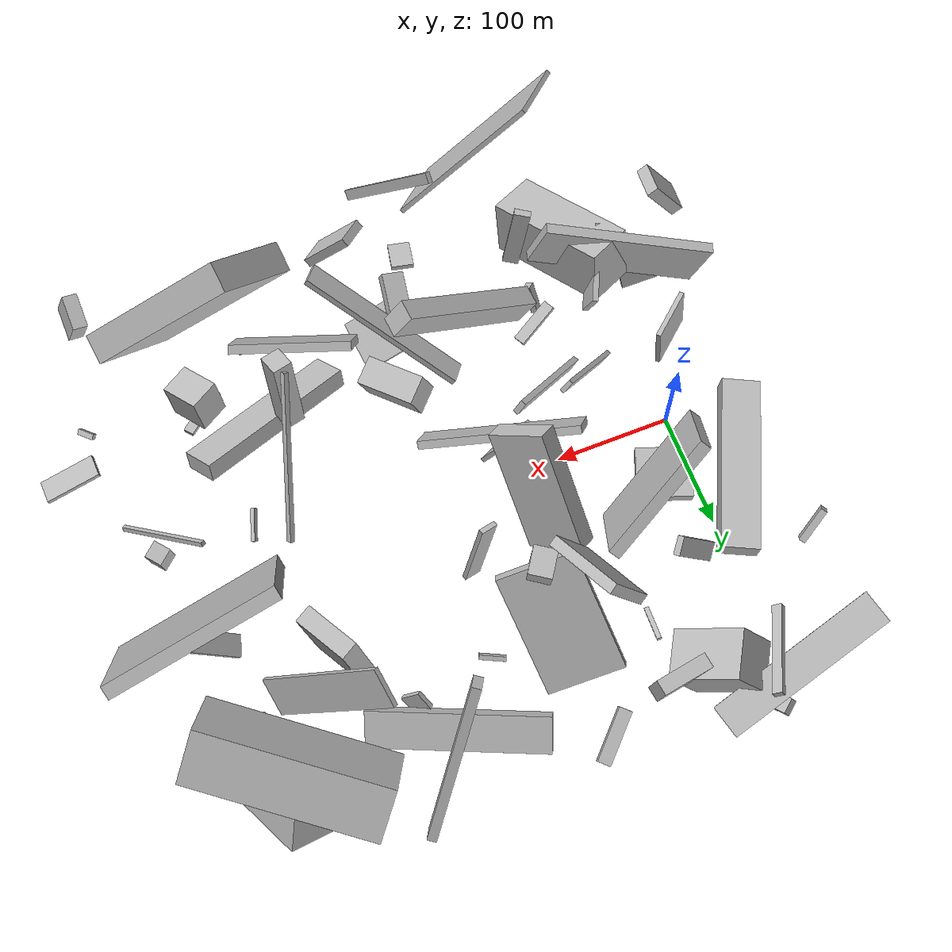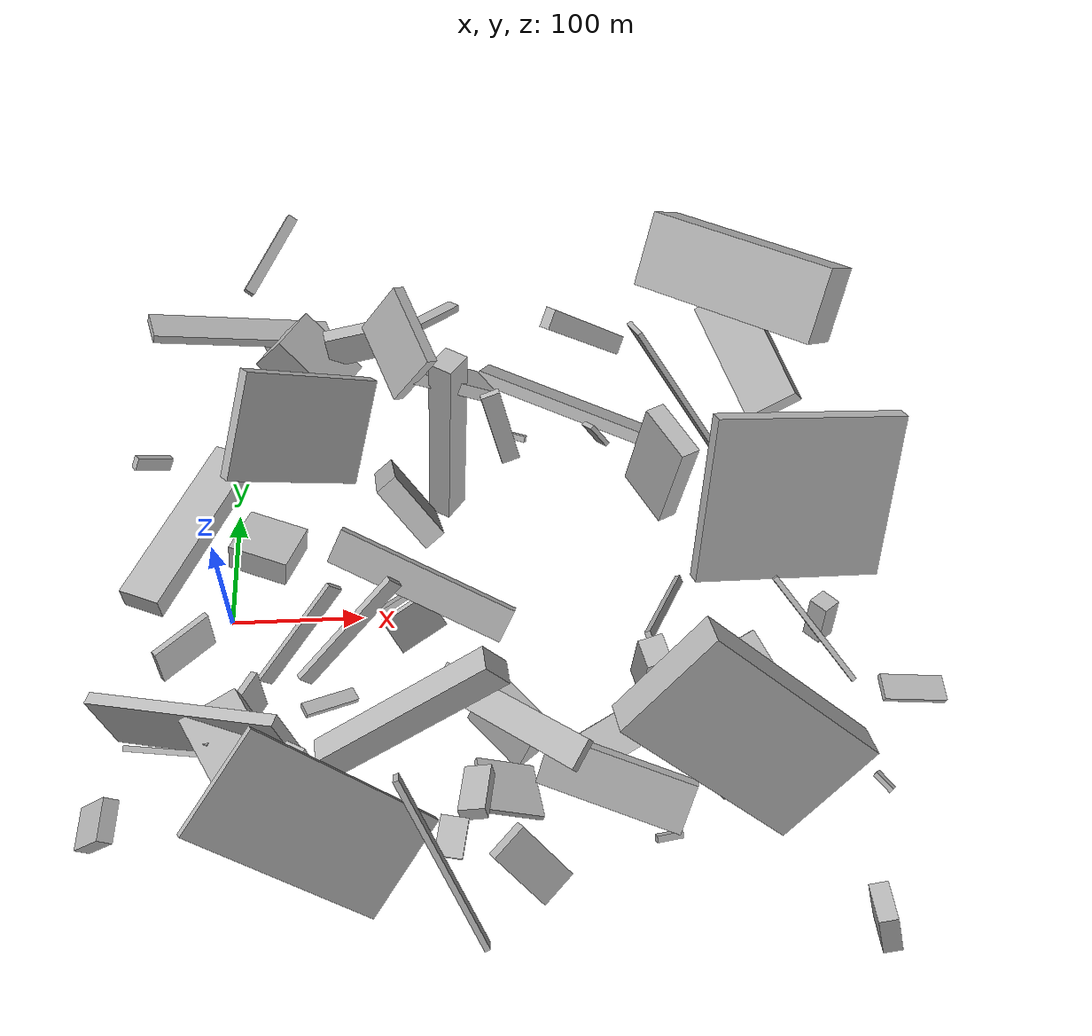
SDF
<sdf version="1.6">
 <world name="default">
  <scene>
   <sky><clouds><speed>12</speed></clouds></sky>
   <ambient>0.4 0.4 0.4 1</ambient>
   <background>0.7 0.7 0.7 1</background>
   <shadows>1</shadows>
  </scene>
  <gravity>0 0 -9.8066</gravity>
  <magnetic_field>6e-06 2.3e-05 -4.2e-05</magnetic_field>
  <physics default="0" name="default_physics" type="ode">
   <ode>
    <solver>
     <type>quick</type>
     <iters>10</iters>
     <sor>1.0</sor>
     <use_dynamic_moi_rescaling>0</use_dynamic_moi_rescaling>
    </solver>
    <constraints>
     <cfm>0</cfm>
     <erp>0.2</erp>
     <contact_max_correcting_vel>100</contact_max_correcting_vel>
     <contact_surface_layer>0.001</contact_surface_layer>
    </constraints>
   </ode>
   <max_step_size>0.004</max_step_size>
   <real_time_factor>1</real_time_factor>
   <real_time_update_rate>250</real_time_update_rate>
  </physics>
  <light name="sun" type="directional">
   <pose>0 0 10 0 0 0</pose>
   <diffuse>0.8 0.8 0.8 1</diffuse>
   <specular>0.2 0.2 0.2 1</specular>
   <attenuation>
    <range>1000</range>
    <constant>0.9</constant>
    <linear>0.01</linear>
    <quadratic>0.001</quadratic>
   </attenuation>
   <direction>-0.5 0.1 -0.9</direction>
  </light>
  <model name="building_1">
   <static>0</static>
   <pose>207.03133801378473 -179.82656864407636 24.555606538487392 -2.07587462719808 -1.0840218479317547 0.5806922564025359</pose>
   <link name="link">
    <gravity>0</gravity>
    <pose>0 0 23.0 0 0 0</pose>
    <collision name="collision"><geometry><box><size>4 44 46</size></box></geometry></collision>
    <visual name="visual">
     <cast_shadows>0</cast_shadows>
     <geometry><box><size>4 44 46</size></box></geometry>
     <material>
      <script>
       <uri>model://HANNAS_wall/materials/scripts</uri>
       <uri>model://HANNAS_wall/materials/textures</uri>
       <name>vrc/HANNAS_wall</name>
      </script>
     </material>
    </visual>
   </link>
  </model>
  <model name="building_2">
   <static>0</static>
   <pose>45.68089349129546 201.98140699089146 46.94285155546364 1.6538465109013927 -0.6332314647711537 2.5725708672790213</pose>
   <link name="link">
    <gravity>0</gravity>
    <pose>0 0 20.5 0 0 0</pose>
    <collision name="collision"><geometry><box><size>63 44 41</size></box></geometry></collision>
    <visual name="visual">
     <cast_shadows>0</cast_shadows>
     <geometry><box><size>63 44 41</size></box></geometry>
     <material>
      <script>
       <uri>model://HANNAS_wall/materials/scripts</uri>
       <uri>model://HANNAS_wall/materials/textures</uri>
       <name>vrc/HANNAS_wall</name>
      </script>
     </material>
    </visual>
   </link>
  </model>
  <model name="building_3">
   <static>0</static>
   <pose>-17.993431952205434 63.16051531408612 29.271907670295178 1.6311967029107788 -0.0037917073383606594 -2.0053342889796797</pose>
   <link name="link">
    <gravity>0</gravity>
    <pose>0 0 16.5 0 0 0</pose>
    <collision name="collision"><geometry><box><size>150 18 33</size></box></geometry></collision>
    <visual name="visual">
     <cast_shadows>0</cast_shadows>
     <geometry><box><size>150 18 33</size></box></geometry>
     <material>
      <script>
       <uri>model://HANNAS_wall/materials/scripts</uri>
       <uri>model://HANNAS_wall/materials/textures</uri>
       <name>vrc/HANNAS_wall</name>
      </script>
     </material>
    </visual>
   </link>
  </model>
  <model name="building_4">
   <static>0</static>
   <pose>406.1026028510513 -197.7259405589854 91.61203713005726 0.7811109287362976 -0.377183152252744 -1.4618144650387173</pose>
   <link name="link">
    <gravity>0</gravity>
    <pose>0 0 75.0 0 0 0</pose>
    <collision name="collision"><geometry><box><size>25 84 150</size></box></geometry></collision>
    <visual name="visual">
     <cast_shadows>0</cast_shadows>
     <geometry><box><size>25 84 150</size></box></geometry>
     <material>
      <script>
       <uri>model://HANNAS_wall/materials/scripts</uri>
       <uri>model://HANNAS_wall/materials/textures</uri>
       <name>vrc/HANNAS_wall</name>
      </script>
     </material>
    </visual>
   </link>
  </model>
  <model name="building_5">
   <static>0</static>
   <pose>161.9851902289659 197.92995460170903 62.681478628733736 0.4425740534790729 -0.7982265292344801 1.144569204504808</pose>
   <link name="link">
    <gravity>0</gravity>
    <pose>0 0 53.5 0 0 0</pose>
    <collision name="collision"><geometry><box><size>9 65 107</size></box></geometry></collision>
    <visual name="visual">
     <cast_shadows>0</cast_shadows>
     <geometry><box><size>9 65 107</size></box></geometry>
     <material>
      <script>
       <uri>model://HANNAS_wall/materials/scripts</uri>
       <uri>model://HANNAS_wall/materials/textures</uri>
       <name>vrc/HANNAS_wall</name>
      </script>
     </material>
    </visual>
   </link>
  </model>
  <model name="building_6">
   <static>0</static>
   <pose>276.1726967749778 -169.55098008042822 43.22986768496564 2.1601331890336604 -0.09326886543798585 2.7580916420415043</pose>
   <link name="link">
    <gravity>0</gravity>
    <pose>0 0 4.0 0 0 0</pose>
    <collision name="collision"><geometry><box><size>105 40 8</size></box></geometry></collision>
    <visual name="visual">
     <cast_shadows>0</cast_shadows>
     <geometry><box><size>105 40 8</size></box></geometry>
     <material>
      <script>
       <uri>model://HANNAS_wall/materials/scripts</uri>
       <uri>model://HANNAS_wall/materials/textures</uri>
       <name>vrc/HANNAS_wall</name>
      </script>
     </material>
    </visual>
   </link>
  </model>
  <model name="building_7">
   <static>0</static>
   <pose>357.56553652251864 38.56193824182666 84.05432504008078 1.7676236972880233 0.4649541959449369 1.785133607729958</pose>
   <link name="link">
    <gravity>0</gravity>
    <pose>0 0 75.0 0 0 0</pose>
    <collision name="collision"><geometry><box><size>12 132 150</size></box></geometry></collision>
    <visual name="visual">
     <cast_shadows>0</cast_shadows>
     <geometry><box><size>12 132 150</size></box></geometry>
     <material>
      <script>
       <uri>model://HANNAS_wall/materials/scripts</uri>
       <uri>model://HANNAS_wall/materials/textures</uri>
       <name>vrc/HANNAS_wall</name>
      </script>
     </material>
    </visual>
   </link>
  </model>
  <model name="building_8">
   <static>0</static>
   <pose>145.87950832627388 -126.29738537296413 66.83883931209114 -0.0657674722873654 -0.6422561459859432 0.13249014817401022</pose>
   <link name="link">
    <gravity>0</gravity>
    <pose>0 0 13.0 0 0 0</pose>
    <collision name="collision"><geometry><box><size>150 18 26</size></box></geometry></collision>
    <visual name="visual">
     <cast_shadows>0</cast_shadows>
     <geometry><box><size>150 18 26</size></box></geometry>
     <material>
      <script>
       <uri>model://HANNAS_wall/materials/scripts</uri>
       <uri>model://HANNAS_wall/materials/textures</uri>
       <name>vrc/HANNAS_wall</name>
      </script>
     </material>
    </visual>
   </link>
  </model>
  <model name="building_9">
   <static>0</static>
   <pose>34.44665036627563 71.58113510763275 19.755730331206887 -0.3332014644701353 1.3622466065269707 -2.259319217686199</pose>
   <link name="link">
    <gravity>0</gravity>
    <pose>0 0 21.0 0 0 0</pose>
    <collision name="collision"><geometry><box><size>22 47 42</size></box></geometry></collision>
    <visual name="visual">
     <cast_shadows>0</cast_shadows>
     <geometry><box><size>22 47 42</size></box></geometry>
     <material>
      <script>
       <uri>model://HANNAS_wall/materials/scripts</uri>
       <uri>model://HANNAS_wall/materials/textures</uri>
       <name>vrc/HANNAS_wall</name>
      </script>
     </material>
    </visual>
   </link>
  </model>
  <model name="building_10">
   <static>0</static>
   <pose>176.8228784217784 107.70399698210205 78.34562631816597 -1.8399825967830206 -1.4299178499395602 1.2483487746235762</pose>
   <link name="link">
    <gravity>0</gravity>
    <pose>0 0 9.5 0 0 0</pose>
    <collision name="collision"><geometry><box><size>150 23 19</size></box></geometry></collision>
    <visual name="visual">
     <cast_shadows>0</cast_shadows>
     <geometry><box><size>150 23 19</size></box></geometry>
     <material>
      <script>
       <uri>model://HANNAS_wall/materials/scripts</uri>
       <uri>model://HANNAS_wall/materials/textures</uri>
       <name>vrc/HANNAS_wall</name>
      </script>
     </material>
    </visual>
   </link>
  </model>
  <model name="building_11">
   <static>0</static>
   <pose>321.41230062851974 -104.9787243083189 37.42691171547469 0.30075330108506493 0.417021102686572 -1.0286640173192487</pose>
   <link name="link">
    <gravity>0</gravity>
    <pose>0 0 8.0 0 0 0</pose>
    <collision name="collision"><geometry><box><size>29 150 16</size></box></geometry></collision>
    <visual name="visual">
     <cast_shadows>0</cast_shadows>
     <geometry><box><size>29 150 16</size></box></geometry>
     <material>
      <script>
       <uri>model://HANNAS_wall/materials/scripts</uri>
       <uri>model://HANNAS_wall/materials/textures</uri>
       <name>vrc/HANNAS_wall</name>
      </script>
     </material>
    </visual>
   </link>
  </model>
  <model name="building_12">
   <static>0</static>
   <pose>390.7217541445759 184.63607846864403 128.1964512771194 0.16907455380882996 -0.6390790042762481 -2.309250714902341</pose>
   <link name="link">
    <gravity>0</gravity>
    <pose>0 0 29.0 0 0 0</pose>
    <collision name="collision"><geometry><box><size>44 150 58</size></box></geometry></collision>
    <visual name="visual">
     <cast_shadows>0</cast_shadows>
     <geometry><box><size>44 150 58</size></box></geometry>
     <material>
      <script>
       <uri>model://HANNAS_wall/materials/scripts</uri>
       <uri>model://HANNAS_wall/materials/textures</uri>
       <name>vrc/HANNAS_wall</name>
      </script>
     </material>
    </visual>
   </link>
  </model>
  <model name="building_13">
   <static>0</static>
   <pose>52.57708385155124 126.68817777935406 69.5444079430602 2.5689326082770543 -0.3930392805579423 -2.2111667368330794</pose>
   <link name="link">
    <gravity>0</gravity>
    <pose>0 0 24.5 0 0 0</pose>
    <collision name="collision"><geometry><box><size>16 6 49</size></box></geometry></collision>
    <visual name="visual">
     <cast_shadows>0</cast_shadows>
     <geometry><box><size>16 6 49</size></box></geometry>
     <material>
      <script>
       <uri>model://HANNAS_wall/materials/scripts</uri>
       <uri>model://HANNAS_wall/materials/textures</uri>
       <name>vrc/HANNAS_wall</name>
      </script>
     </material>
    </visual>
   </link>
  </model>
  <model name="building_14">
   <static>0</static>
   <pose>361.95979284593443 -135.41762886589308 46.1719040928021 1.8427030378848974 -0.07483934741389904 0.5560310040259743</pose>
   <link name="link">
    <gravity>0</gravity>
    <pose>0 0 17.5 0 0 0</pose>
    <collision name="collision"><geometry><box><size>27 33 35</size></box></geometry></collision>
    <visual name="visual">
     <cast_shadows>0</cast_shadows>
     <geometry><box><size>27 33 35</size></box></geometry>
     <material>
      <script>
       <uri>model://HANNAS_wall/materials/scripts</uri>
       <uri>model://HANNAS_wall/materials/textures</uri>
       <name>vrc/HANNAS_wall</name>
      </script>
     </material>
    </visual>
   </link>
  </model>
  <model name="building_15">
   <static>0</static>
   <pose>159.35978637251682 -250.82765278324615 104.34303591211419 2.1875904494594156 0.3103148724568858 -2.8995164780222864</pose>
   <link name="link">
    <gravity>0</gravity>
    <pose>0 0 4.5 0 0 0</pose>
    <collision name="collision"><geometry><box><size>4 135 9</size></box></geometry></collision>
    <visual name="visual">
     <cast_shadows>0</cast_shadows>
     <geometry><box><size>4 135 9</size></box></geometry>
     <material>
      <script>
       <uri>model://HANNAS_wall/materials/scripts</uri>
       <uri>model://HANNAS_wall/materials/textures</uri>
       <name>vrc/HANNAS_wall</name>
      </script>
     </material>
    </visual>
   </link>
  </model>
  <model name="building_16">
   <static>0</static>
   <pose>79.60733798082512 -99.07740588536434 55.129707940108005 1.8464269913810334 -1.274802586326647 0.18212359419008362</pose>
   <link name="link">
    <gravity>0</gravity>
    <pose>0 0 5.0 0 0 0</pose>
    <collision name="collision"><geometry><box><size>4 40 10</size></box></geometry></collision>
    <visual name="visual">
     <cast_shadows>0</cast_shadows>
     <geometry><box><size>4 40 10</size></box></geometry>
     <material>
      <script>
       <uri>model://HANNAS_wall/materials/scripts</uri>
       <uri>model://HANNAS_wall/materials/textures</uri>
       <name>vrc/HANNAS_wall</name>
      </script>
     </material>
    </visual>
   </link>
  </model>
  <model name="building_17">
   <static>0</static>
   <pose>131.87058221815602 41.37820725405767 81.43396679481657 -0.9752416564270314 -0.7802898488255688 -1.469202523978807</pose>
   <link name="link">
    <gravity>0</gravity>
    <pose>0 0 8.5 0 0 0</pose>
    <collision name="collision"><geometry><box><size>107 53 17</size></box></geometry></collision>
    <visual name="visual">
     <cast_shadows>0</cast_shadows>
     <geometry><box><size>107 53 17</size></box></geometry>
     <material>
      <script>
       <uri>model://HANNAS_wall/materials/scripts</uri>
       <uri>model://HANNAS_wall/materials/textures</uri>
       <name>vrc/HANNAS_wall</name>
      </script>
     </material>
    </visual>
   </link>
  </model>
  <model name="building_18">
   <static>0</static>
   <pose>57.71753777804609 -44.734609713383016 54.42149229016693 1.2953125927125249 0.7859823749781513 0.2227060275396204</pose>
   <link name="link">
    <gravity>0</gravity>
    <pose>0 0 2.0 0 0 0</pose>
    <collision name="collision"><geometry><box><size>12 92 4</size></box></geometry></collision>
    <visual name="visual">
     <cast_shadows>0</cast_shadows>
     <geometry><box><size>12 92 4</size></box></geometry>
     <material>
      <script>
       <uri>model://HANNAS_wall/materials/scripts</uri>
       <uri>model://HANNAS_wall/materials/textures</uri>
       <name>vrc/HANNAS_wall</name>
      </script>
     </material>
    </visual>
   </link>
  </model>
  <model name="building_19">
   <static>0</static>
   <pose>190.26714568274826 -87.7734796475936 26.673660484795022 2.1554825250124328 -1.2839159991200593 0.16399225038640056</pose>
   <link name="link">
    <gravity>0</gravity>
    <pose>0 0 26.0 0 0 0</pose>
    <collision name="collision"><geometry><box><size>35 25 52</size></box></geometry></collision>
    <visual name="visual">
     <cast_shadows>0</cast_shadows>
     <geometry><box><size>35 25 52</size></box></geometry>
     <material>
      <script>
       <uri>model://HANNAS_wall/materials/scripts</uri>
       <uri>model://HANNAS_wall/materials/textures</uri>
       <name>vrc/HANNAS_wall</name>
      </script>
     </material>
    </visual>
   </link>
  </model>
  <model name="building_20">
   <static>0</static>
   <pose>164.27304942239843 -205.91546877433748 49.73359538857104 -0.006182057788467143 -0.29105557538973414 1.361042253599788</pose>
   <link name="link">
    <gravity>0</gravity>
    <pose>0 0 2.0 0 0 0</pose>
    <collision name="collision"><geometry><box><size>27 19 4</size></box></geometry></collision>
    <visual name="visual">
     <cast_shadows>0</cast_shadows>
     <geometry><box><size>27 19 4</size></box></geometry>
     <material>
      <script>
       <uri>model://HANNAS_wall/materials/scripts</uri>
       <uri>model://HANNAS_wall/materials/textures</uri>
       <name>vrc/HANNAS_wall</name>
      </script>
     </material>
    </visual>
   </link>
  </model>
  <model name="building_21">
   <static>0</static>
   <pose>268.27931061079914 192.7777438225504 22.77560409585878 3.0063389996480736 -0.6485241195855963 -1.922363673345818</pose>
   <link name="link">
    <gravity>0</gravity>
    <pose>0 0 5.0 0 0 0</pose>
    <collision name="collision"><geometry><box><size>32 150 10</size></box></geometry></collision>
    <visual name="visual">
     <cast_shadows>0</cast_shadows>
     <geometry><box><size>32 150 10</size></box></geometry>
     <material>
      <script>
       <uri>model://HANNAS_wall/materials/scripts</uri>
       <uri>model://HANNAS_wall/materials/textures</uri>
       <name>vrc/HANNAS_wall</name>
      </script>
     </material>
    </visual>
   </link>
  </model>
  <model name="building_22">
   <static>0</static>
   <pose>231.2396053447493 -240.5497478229759 42.40309032026714 0.3719443788958804 -0.6035458542199771 -1.048612886759953</pose>
   <link name="link">
    <gravity>0</gravity>
    <pose>0 0 27.5 0 0 0</pose>
    <collision name="collision"><geometry><box><size>8 27 55</size></box></geometry></collision>
    <visual name="visual">
     <cast_shadows>0</cast_shadows>
     <geometry><box><size>8 27 55</size></box></geometry>
     <material>
      <script>
       <uri>model://HANNAS_wall/materials/scripts</uri>
       <uri>model://HANNAS_wall/materials/textures</uri>
       <name>vrc/HANNAS_wall</name>
      </script>
     </material>
    </visual>
   </link>
  </model>
  <model name="building_23">
   <static>0</static>
   <pose>-35.652025465561586 -120.64139807787865 24.939395514198573 0.14597488809614226 -0.4619755988916748 1.4398714766706002</pose>
   <link name="link">
    <gravity>0</gravity>
    <pose>0 0 15.5 0 0 0</pose>
    <collision name="collision"><geometry><box><size>4 51 31</size></box></geometry></collision>
    <visual name="visual">
     <cast_shadows>0</cast_shadows>
     <geometry><box><size>4 51 31</size></box></geometry>
     <material>
      <script>
       <uri>model://HANNAS_wall/materials/scripts</uri>
       <uri>model://HANNAS_wall/materials/textures</uri>
       <name>vrc/HANNAS_wall</name>
      </script>
     </material>
    </visual>
   </link>
  </model>
  <model name="building_24">
   <static>0</static>
   <pose>341.22712500120565 102.5491641083801 51.2989974421735 1.46652532260699 0.08755468533276628 -1.0750973352760158</pose>
   <link name="link">
    <gravity>0</gravity>
    <pose>0 0 8.0 0 0 0</pose>
    <collision name="collision"><geometry><box><size>49 84 16</size></box></geometry></collision>
    <visual name="visual">
     <cast_shadows>0</cast_shadows>
     <geometry><box><size>49 84 16</size></box></geometry>
     <material>
      <script>
       <uri>model://HANNAS_wall/materials/scripts</uri>
       <uri>model://HANNAS_wall/materials/textures</uri>
       <name>vrc/HANNAS_wall</name>
      </script>
     </material>
    </visual>
   </link>
  </model>
  <model name="building_25">
   <static>0</static>
   <pose>446.82257860612106 -37.99666188562338 28.490045660324867 2.246486716125257 1.3890150963949535 -1.774395877027261</pose>
   <link name="link">
    <gravity>0</gravity>
    <pose>0 0 7.5 0 0 0</pose>
    <collision name="collision"><geometry><box><size>34 15 15</size></box></geometry></collision>
    <visual name="visual">
     <cast_shadows>0</cast_shadows>
     <geometry><box><size>34 15 15</size></box></geometry>
     <material>
      <script>
       <uri>model://HANNAS_wall/materials/scripts</uri>
       <uri>model://HANNAS_wall/materials/textures</uri>
       <name>vrc/HANNAS_wall</name>
      </script>
     </material>
    </visual>
   </link>
  </model>
  <model name="building_26">
   <static>0</static>
   <pose>208.33494582139724 -41.19519706748234 47.276020897064555 1.1252289944015974 0.8586708641811664 -2.3069729188992896</pose>
   <link name="link">
    <gravity>0</gravity>
    <pose>0 0 69.0 0 0 0</pose>
    <collision name="collision"><geometry><box><size>27 7 138</size></box></geometry></collision>
    <visual name="visual">
     <cast_shadows>0</cast_shadows>
     <geometry><box><size>27 7 138</size></box></geometry>
     <material>
      <script>
       <uri>model://HANNAS_wall/materials/scripts</uri>
       <uri>model://HANNAS_wall/materials/textures</uri>
       <name>vrc/HANNAS_wall</name>
      </script>
     </material>
    </visual>
   </link>
  </model>
  <model name="building_27">
   <static>0</static>
   <pose>161.31826030050695 248.03391741935283 65.99511091233221 -0.21751253363053247 0.25569461081018685 0.7919369354427442</pose>
   <link name="link">
    <gravity>0</gravity>
    <pose>0 0 3.0 0 0 0</pose>
    <collision name="collision"><geometry><box><size>45 11 6</size></box></geometry></collision>
    <visual name="visual">
     <cast_shadows>0</cast_shadows>
     <geometry><box><size>45 11 6</size></box></geometry>
     <material>
      <script>
       <uri>model://HANNAS_wall/materials/scripts</uri>
       <uri>model://HANNAS_wall/materials/textures</uri>
       <name>vrc/HANNAS_wall</name>
      </script>
     </material>
    </visual>
   </link>
  </model>
  <model name="building_28">
   <static>0</static>
   <pose>285.33228402177014 227.41492322690848 77.47806583296659 2.286568177181131 -0.10693361345949744 -0.6051471322963585</pose>
   <link name="link">
    <gravity>0</gravity>
    <pose>0 0 8.0 0 0 0</pose>
    <collision name="collision"><geometry><box><size>8 150 16</size></box></geometry></collision>
    <visual name="visual">
     <cast_shadows>0</cast_shadows>
     <geometry><box><size>8 150 16</size></box></geometry>
     <material>
      <script>
       <uri>model://HANNAS_wall/materials/scripts</uri>
       <uri>model://HANNAS_wall/materials/textures</uri>
       <name>vrc/HANNAS_wall</name>
      </script>
     </material>
    </visual>
   </link>
  </model>
  <model name="building_29">
   <static>0</static>
   <pose>69.79797561180412 264.75568306866086 33.502033687135814 1.23607215179401 -0.12211066423492078 -1.2997649455607454</pose>
   <link name="link">
    <gravity>0</gravity>
    <pose>0 0 75.0 0 0 0</pose>
    <collision name="collision"><geometry><box><size>29 7 150</size></box></geometry></collision>
    <visual name="visual">
     <cast_shadows>0</cast_shadows>
     <geometry><box><size>29 7 150</size></box></geometry>
     <material>
      <script>
       <uri>model://HANNAS_wall/materials/scripts</uri>
       <uri>model://HANNAS_wall/materials/textures</uri>
       <name>vrc/HANNAS_wall</name>
      </script>
     </material>
    </visual>
   </link>
  </model>
  <model name="building_30">
   <static>0</static>
   <pose>313.6127101105144 -194.91153368964893 10.345221288780726 -2.9402520856667222 -0.8531169651570288 1.6320671262991508</pose>
   <link name="link">
    <gravity>0</gravity>
    <pose>0 0 2.0 0 0 0</pose>
    <collision name="collision"><geometry><box><size>5 19 4</size></box></geometry></collision>
    <visual name="visual">
     <cast_shadows>0</cast_shadows>
     <geometry><box><size>5 19 4</size></box></geometry>
     <material>
      <script>
       <uri>model://HANNAS_wall/materials/scripts</uri>
       <uri>model://HANNAS_wall/materials/textures</uri>
       <name>vrc/HANNAS_wall</name>
      </script>
     </material>
    </visual>
   </link>
  </model>
  <model name="building_31">
   <static>0</static>
   <pose>230.7268208603981 143.5292625484273 33.279818223688515 1.6708730185785023 -0.6053074265431023 -2.06223257241623</pose>
   <link name="link">
    <gravity>0</gravity>
    <pose>0 0 11.0 0 0 0</pose>
    <collision name="collision"><geometry><box><size>4 5 22</size></box></geometry></collision>
    <visual name="visual">
     <cast_shadows>0</cast_shadows>
     <geometry><box><size>4 5 22</size></box></geometry>
     <material>
      <script>
       <uri>model://HANNAS_wall/materials/scripts</uri>
       <uri>model://HANNAS_wall/materials/textures</uri>
       <name>vrc/HANNAS_wall</name>
      </script>
     </material>
    </visual>
   </link>
  </model>
  <model name="building_32">
   <static>0</static>
   <pose>427.7772892502754 53.943719166192835 30.07058392299358 0.7723566811458743 -0.08768500719475826 -1.8820866039505957</pose>
   <link name="link">
    <gravity>0</gravity>
    <pose>0 0 2.0 0 0 0</pose>
    <collision name="collision"><geometry><box><size>19 57 4</size></box></geometry></collision>
    <visual name="visual">
     <cast_shadows>0</cast_shadows>
     <geometry><box><size>19 57 4</size></box></geometry>
     <material>
      <script>
       <uri>model://HANNAS_wall/materials/scripts</uri>
       <uri>model://HANNAS_wall/materials/textures</uri>
       <name>vrc/HANNAS_wall</name>
      </script>
     </material>
    </visual>
   </link>
  </model>
  <model name="building_33">
   <static>0</static>
   <pose>351.97662486896405 152.0848636709639 69.3715530897012 0.9845677774871016 -0.41360476550410585 0.4272852015806843</pose>
   <link name="link">
    <gravity>0</gravity>
    <pose>0 0 16.5 0 0 0</pose>
    <collision name="collision"><geometry><box><size>4 150 33</size></box></geometry></collision>
    <visual name="visual">
     <cast_shadows>0</cast_shadows>
     <geometry><box><size>4 150 33</size></box></geometry>
     <material>
      <script>
       <uri>model://HANNAS_wall/materials/scripts</uri>
       <uri>model://HANNAS_wall/materials/textures</uri>
       <name>vrc/HANNAS_wall</name>
      </script>
     </material>
    </visual>
   </link>
  </model>
  <model name="building_34">
   <static>0</static>
   <pose>122.97974662681037 -31.50017041298309 21.840130681164368 -1.2956264122559313 -0.34961895306789653 -1.1827847237417666</pose>
   <link name="link">
    <gravity>0</gravity>
    <pose>0 0 19.5 0 0 0</pose>
    <collision name="collision"><geometry><box><size>4 35 39</size></box></geometry></collision>
    <visual name="visual">
     <cast_shadows>0</cast_shadows>
     <geometry><box><size>4 35 39</size></box></geometry>
     <material>
      <script>
       <uri>model://HANNAS_wall/materials/scripts</uri>
       <uri>model://HANNAS_wall/materials/textures</uri>
       <name>vrc/HANNAS_wall</name>
      </script>
     </material>
    </visual>
   </link>
  </model>
  <model name="building_35">
   <static>0</static>
   <pose>76.56665309611707 -169.59173899854585 49.502502861613195 0.1008817999474255 0.10635003908565371 -2.0897765690612107</pose>
   <link name="link">
    <gravity>0</gravity>
    <pose>0 0 35.5 0 0 0</pose>
    <collision name="collision"><geometry><box><size>6 14 71</size></box></geometry></collision>
    <visual name="visual">
     <cast_shadows>0</cast_shadows>
     <geometry><box><size>6 14 71</size></box></geometry>
     <material>
      <script>
       <uri>model://HANNAS_wall/materials/scripts</uri>
       <uri>model://HANNAS_wall/materials/textures</uri>
       <name>vrc/HANNAS_wall</name>
      </script>
     </material>
    </visual>
   </link>
  </model>
  <model name="building_36">
   <static>0</static>
   <pose>113.61426878124638 -5.355308572350802 15.817150865827903 -1.4670943442755036 0.6793915050680291 -0.9308478071002316</pose>
   <link name="link">
    <gravity>0</gravity>
    <pose>0 0 20.5 0 0 0</pose>
    <collision name="collision"><geometry><box><size>4 17 41</size></box></geometry></collision>
    <visual name="visual">
     <cast_shadows>0</cast_shadows>
     <geometry><box><size>4 17 41</size></box></geometry>
     <material>
      <script>
       <uri>model://HANNAS_wall/materials/scripts</uri>
       <uri>model://HANNAS_wall/materials/textures</uri>
       <name>vrc/HANNAS_wall</name>
      </script>
     </material>
    </visual>
   </link>
  </model>
  <model name="building_37">
   <static>0</static>
   <pose>-57.33099423305817 145.31540804433524 16.940411934328534 -0.966843728994531 0.18217535799820186 2.2097194517407446</pose>
   <link name="link">
    <gravity>0</gravity>
    <pose>0 0 16.0 0 0 0</pose>
    <collision name="collision"><geometry><box><size>6 11 32</size></box></geometry></collision>
    <visual name="visual">
     <cast_shadows>0</cast_shadows>
     <geometry><box><size>6 11 32</size></box></geometry>
     <material>
      <script>
       <uri>model://HANNAS_wall/materials/scripts</uri>
       <uri>model://HANNAS_wall/materials/textures</uri>
       <name>vrc/HANNAS_wall</name>
      </script>
     </material>
    </visual>
   </link>
  </model>
  <model name="building_38">
   <static>0</static>
   <pose>432.6149766963444 -46.86379133344818 32.45189740119457 1.064506333229118 -0.5882386507557827 2.362513257221676</pose>
   <link name="link">
    <gravity>0</gravity>
    <pose>0 0 2.0 0 0 0</pose>
    <collision name="collision"><geometry><box><size>98 4 4</size></box></geometry></collision>
    <visual name="visual">
     <cast_shadows>0</cast_shadows>
     <geometry><box><size>98 4 4</size></box></geometry>
     <material>
      <script>
       <uri>model://HANNAS_wall/materials/scripts</uri>
       <uri>model://HANNAS_wall/materials/textures</uri>
       <name>vrc/HANNAS_wall</name>
      </script>
     </material>
    </visual>
   </link>
  </model>
  <model name="building_39">
   <static>0</static>
   <pose>122.36791342928282 145.81149343855415 127.30523391046 0.4529181327311745 -0.30892809889944023 1.9610862324889748</pose>
   <link name="link">
    <gravity>0</gravity>
    <pose>0 0 26.5 0 0 0</pose>
    <collision name="collision"><geometry><box><size>64 9 53</size></box></geometry></collision>
    <visual name="visual">
     <cast_shadows>0</cast_shadows>
     <geometry><box><size>64 9 53</size></box></geometry>
     <material>
      <script>
       <uri>model://HANNAS_wall/materials/scripts</uri>
       <uri>model://HANNAS_wall/materials/textures</uri>
       <name>vrc/HANNAS_wall</name>
      </script>
     </material>
    </visual>
   </link>
  </model>
  <model name="building_40">
   <static>0</static>
   <pose>21.985669367811525 -130.52730318060708 57.64801889285176 0.1898741105659163 0.20912015989180677 2.7509763318605684</pose>
   <link name="link">
    <gravity>0</gravity>
    <pose>0 0 15.5 0 0 0</pose>
    <collision name="collision"><geometry><box><size>5 68 31</size></box></geometry></collision>
    <visual name="visual">
     <cast_shadows>0</cast_shadows>
     <geometry><box><size>5 68 31</size></box></geometry>
     <material>
      <script>
       <uri>model://HANNAS_wall/materials/scripts</uri>
       <uri>model://HANNAS_wall/materials/textures</uri>
       <name>vrc/HANNAS_wall</name>
      </script>
     </material>
    </visual>
   </link>
  </model>
  <model name="building_41">
   <static>0</static>
   <pose>419.81265430690274 200.35571205239614 57.0693393295054 0.4805718027886724 -0.4789326998456172 0.18496868426543314</pose>
   <link name="link">
    <gravity>0</gravity>
    <pose>0 0 23.5 0 0 0</pose>
    <collision name="collision"><geometry><box><size>42 97 47</size></box></geometry></collision>
    <visual name="visual">
     <cast_shadows>0</cast_shadows>
     <geometry><box><size>42 97 47</size></box></geometry>
     <material>
      <script>
       <uri>model://HANNAS_wall/materials/scripts</uri>
       <uri>model://HANNAS_wall/materials/textures</uri>
       <name>vrc/HANNAS_wall</name>
      </script>
     </material>
    </visual>
   </link>
  </model>
  <model name="building_42">
   <static>0</static>
   <pose>304.9545429772904 -115.67314354924596 91.32025516414622 0.34011450914297814 -1.3023107270718481 -1.6441735516869538</pose>
   <link name="link">
    <gravity>0</gravity>
    <pose>0 0 9.5 0 0 0</pose>
    <collision name="collision"><geometry><box><size>73 17 19</size></box></geometry></collision>
    <visual name="visual">
     <cast_shadows>0</cast_shadows>
     <geometry><box><size>73 17 19</size></box></geometry>
     <material>
      <script>
       <uri>model://HANNAS_wall/materials/scripts</uri>
       <uri>model://HANNAS_wall/materials/textures</uri>
       <name>vrc/HANNAS_wall</name>
      </script>
     </material>
    </visual>
   </link>
  </model>
  <model name="building_43">
   <static>0</static>
   <pose>287.7966966843093 156.03417907794085 19.454997496129096 -1.1300641912048899 -0.5822520031813723 -1.1234269241311625</pose>
   <link name="link">
    <gravity>0</gravity>
    <pose>0 0 2.0 0 0 0</pose>
    <collision name="collision"><geometry><box><size>17 21 4</size></box></geometry></collision>
    <visual name="visual">
     <cast_shadows>0</cast_shadows>
     <geometry><box><size>17 21 4</size></box></geometry>
     <material>
      <script>
       <uri>model://HANNAS_wall/materials/scripts</uri>
       <uri>model://HANNAS_wall/materials/textures</uri>
       <name>vrc/HANNAS_wall</name>
      </script>
     </material>
    </visual>
   </link>
  </model>
  <model name="building_44">
   <static>0</static>
   <pose>461.9115877676058 -157.03802836650226 18.76971573546035 2.040653106892655 -0.929675729061963 0.33646485048501784</pose>
   <link name="link">
    <gravity>0</gravity>
    <pose>0 0 8.0 0 0 0</pose>
    <collision name="collision"><geometry><box><size>4 5 16</size></box></geometry></collision>
    <visual name="visual">
     <cast_shadows>0</cast_shadows>
     <geometry><box><size>4 5 16</size></box></geometry>
     <material>
      <script>
       <uri>model://HANNAS_wall/materials/scripts</uri>
       <uri>model://HANNAS_wall/materials/textures</uri>
       <name>vrc/HANNAS_wall</name>
      </script>
     </material>
    </visual>
   </link>
  </model>
  <model name="building_45">
   <static>0</static>
   <pose>320.45413428604377 -52.8753747743444 84.14521568187698 2.156089353685623 -0.68185102471368 -1.9345740003406697</pose>
   <link name="link">
    <gravity>0</gravity>
    <pose>0 0 2.0 0 0 0</pose>
    <collision name="collision"><geometry><box><size>143 6 4</size></box></geometry></collision>
    <visual name="visual">
     <cast_shadows>0</cast_shadows>
     <geometry><box><size>143 6 4</size></box></geometry>
     <material>
      <script>
       <uri>model://HANNAS_wall/materials/scripts</uri>
       <uri>model://HANNAS_wall/materials/textures</uri>
       <name>vrc/HANNAS_wall</name>
      </script>
     </material>
    </visual>
   </link>
  </model>
  <model name="building_46">
   <static>0</static>
   <pose>93.18891400790767 -44.287298178655504 56.16015318951621 1.3087472103017048 0.9273944437924619 0.2461681223851875</pose>
   <link name="link">
    <gravity>0</gravity>
    <pose>0 0 2.5 0 0 0</pose>
    <collision name="collision"><geometry><box><size>13 100 5</size></box></geometry></collision>
    <visual name="visual">
     <cast_shadows>0</cast_shadows>
     <geometry><box><size>13 100 5</size></box></geometry>
     <material>
      <script>
       <uri>model://HANNAS_wall/materials/scripts</uri>
       <uri>model://HANNAS_wall/materials/textures</uri>
       <name>vrc/HANNAS_wall</name>
      </script>
     </material>
    </visual>
   </link>
  </model>
  <model name="building_47">
   <static>0</static>
   <pose>28.717596147325843 264.39405332376475 21.41718965238062 -1.311425134595002 -0.5761316555795963 2.1180461851695793</pose>
   <link name="link">
    <gravity>0</gravity>
    <pose>0 0 6.5 0 0 0</pose>
    <collision name="collision"><geometry><box><size>34 8 13</size></box></geometry></collision>
    <visual name="visual">
     <cast_shadows>0</cast_shadows>
     <geometry><box><size>34 8 13</size></box></geometry>
     <material>
      <script>
       <uri>model://HANNAS_wall/materials/scripts</uri>
       <uri>model://HANNAS_wall/materials/textures</uri>
       <name>vrc/HANNAS_wall</name>
      </script>
     </material>
    </visual>
   </link>
  </model>
  <model name="building_48">
   <static>0</static>
   <pose>360.21766949095087 -36.83112509993998 6.085980626368652 -0.585049919944165 -0.18188540330427744 -1.8990496152593477</pose>
   <link name="link">
    <gravity>0</gravity>
    <pose>0 0 2.0 0 0 0</pose>
    <collision name="collision"><geometry><box><size>28 4 4</size></box></geometry></collision>
    <visual name="visual">
     <cast_shadows>0</cast_shadows>
     <geometry><box><size>28 4 4</size></box></geometry>
     <material>
      <script>
       <uri>model://HANNAS_wall/materials/scripts</uri>
       <uri>model://HANNAS_wall/materials/textures</uri>
       <name>vrc/HANNAS_wall</name>
      </script>
     </material>
    </visual>
   </link>
  </model>
  <model name="building_49">
   <static>0</static>
   <pose>-70.25167329263668 -171.88126227858535 51.08668121177087 1.9061232862731345 -0.9300291020546235 -0.371845260807353</pose>
   <link name="link">
    <gravity>0</gravity>
    <pose>0 0 14.5 0 0 0</pose>
    <collision name="collision"><geometry><box><size>42 11 29</size></box></geometry></collision>
    <visual name="visual">
     <cast_shadows>0</cast_shadows>
     <geometry><box><size>42 11 29</size></box></geometry>
     <material>
      <script>
       <uri>model://HANNAS_wall/materials/scripts</uri>
       <uri>model://HANNAS_wall/materials/textures</uri>
       <name>vrc/HANNAS_wall</name>
      </script>
     </material>
    </visual>
   </link>
  </model>
  <model name="building_50">
   <static>0</static>
   <pose>68.21879020894022 -141.51070035410754 16.978179812636835 2.2653684727001693 -0.9682821314141353 -1.4229722810500003</pose>
   <link name="link">
    <gravity>0</gravity>
    <pose>0 0 4.0 0 0 0</pose>
    <collision name="collision"><geometry><box><size>27 6 8</size></box></geometry></collision>
    <visual name="visual">
     <cast_shadows>0</cast_shadows>
     <geometry><box><size>27 6 8</size></box></geometry>
     <material>
      <script>
       <uri>model://HANNAS_wall/materials/scripts</uri>
       <uri>model://HANNAS_wall/materials/textures</uri>
       <name>vrc/HANNAS_wall</name>
      </script>
     </material>
    </visual>
   </link>
  </model>
  <model name="building_51">
   <static>0</static>
   <pose>51.91676731240875 63.8055907384297 92.96652430648662 0.4474475511022127 -0.549443310263758 -2.7211186416773328</pose>
   <link name="link">
    <gravity>0</gravity>
    <pose>0 0 40.5 0 0 0</pose>
    <collision name="collision"><geometry><box><size>111 10 81</size></box></geometry></collision>
    <visual name="visual">
     <cast_shadows>0</cast_shadows>
     <geometry><box><size>111 10 81</size></box></geometry>
     <material>
      <script>
       <uri>model://HANNAS_wall/materials/scripts</uri>
       <uri>model://HANNAS_wall/materials/textures</uri>
       <name>vrc/HANNAS_wall</name>
      </script>
     </material>
    </visual>
   </link>
  </model>
  <model name="building_52">
   <static>0</static>
   <pose>95.5922948699972 223.20058297589213 50.843870555353874 0.1165739096456733 0.07881974828679562 -2.9693007886257856</pose>
   <link name="link">
    <gravity>0</gravity>
    <pose>0 0 14.0 0 0 0</pose>
    <collision name="collision"><geometry><box><size>45 13 28</size></box></geometry></collision>
    <visual name="visual">
     <cast_shadows>0</cast_shadows>
     <geometry><box><size>45 13 28</size></box></geometry>
     <material>
      <script>
       <uri>model://HANNAS_wall/materials/scripts</uri>
       <uri>model://HANNAS_wall/materials/textures</uri>
       <name>vrc/HANNAS_wall</name>
      </script>
     </material>
    </visual>
   </link>
  </model>
  <model name="building_53">
   <static>0</static>
   <pose>203.30579213115357 -134.81630438765455 86.60548829733384 2.6361451276334393 -0.4302009758496227 0.9596731871625495</pose>
   <link name="link">
    <gravity>0</gravity>
    <pose>0 0 2.5 0 0 0</pose>
    <collision name="collision"><geometry><box><size>22 150 5</size></box></geometry></collision>
    <visual name="visual">
     <cast_shadows>0</cast_shadows>
     <geometry><box><size>22 150 5</size></box></geometry>
     <material>
      <script>
       <uri>model://HANNAS_wall/materials/scripts</uri>
       <uri>model://HANNAS_wall/materials/textures</uri>
       <name>vrc/HANNAS_wall</name>
      </script>
     </material>
    </visual>
   </link>
  </model>
  <model name="building_54">
   <static>0</static>
   <pose>465.4207624127313 -112.92098983815866 61.30560333818853 2.759044542050958 1.3136776744028278 2.8101355576925364</pose>
   <link name="link">
    <gravity>0</gravity>
    <pose>0 0 24.0 0 0 0</pose>
    <collision name="collision"><geometry><box><size>4 19 48</size></box></geometry></collision>
    <visual name="visual">
     <cast_shadows>0</cast_shadows>
     <geometry><box><size>4 19 48</size></box></geometry>
     <material>
      <script>
       <uri>model://HANNAS_wall/materials/scripts</uri>
       <uri>model://HANNAS_wall/materials/textures</uri>
       <name>vrc/HANNAS_wall</name>
      </script>
     </material>
    </visual>
   </link>
  </model>
  <model name="building_55">
   <static>0</static>
   <pose>-22.95863593064778 -53.99758820548575 37.033114739275696 0.11078719512454574 -0.042028492135808594 0.7079754167588832</pose>
   <link name="link">
    <gravity>0</gravity>
    <pose>0 0 22.0 0 0 0</pose>
    <collision name="collision"><geometry><box><size>46 4 44</size></box></geometry></collision>
    <visual name="visual">
     <cast_shadows>0</cast_shadows>
     <geometry><box><size>46 4 44</size></box></geometry>
     <material>
      <script>
       <uri>model://HANNAS_wall/materials/scripts</uri>
       <uri>model://HANNAS_wall/materials/textures</uri>
       <name>vrc/HANNAS_wall</name>
      </script>
     </material>
    </visual>
   </link>
  </model>
  <model name="building_56">
   <static>0</static>
   <pose>451.6506935353562 -265.55304922572276 31.37865630943554 1.805178486121173 -0.26017368007941016 -1.5782470108868163</pose>
   <link name="link">
    <gravity>0</gravity>
    <pose>0 0 6.5 0 0 0</pose>
    <collision name="collision"><geometry><box><size>30 34 13</size></box></geometry></collision>
    <visual name="visual">
     <cast_shadows>0</cast_shadows>
     <geometry><box><size>30 34 13</size></box></geometry>
     <material>
      <script>
       <uri>model://HANNAS_wall/materials/scripts</uri>
       <uri>model://HANNAS_wall/materials/textures</uri>
       <name>vrc/HANNAS_wall</name>
      </script>
     </material>
    </visual>
   </link>
  </model>
  <model name="building_57">
   <static>0</static>
   <pose>135.26986320640484 -242.24545580537946 87.50009875075112 0.5864462722186806 -0.5065181466235107 -1.0389735955385173</pose>
   <link name="link">
    <gravity>0</gravity>
    <pose>0 0 75.0 0 0 0</pose>
    <collision name="collision"><geometry><box><size>4 74 150</size></box></geometry></collision>
    <visual name="visual">
     <cast_shadows>0</cast_shadows>
     <geometry><box><size>4 74 150</size></box></geometry>
     <material>
      <script>
       <uri>model://HANNAS_wall/materials/scripts</uri>
       <uri>model://HANNAS_wall/materials/textures</uri>
       <name>vrc/HANNAS_wall</name>
      </script>
     </material>
    </visual>
   </link>
  </model>
  <model name="building_58">
   <static>0</static>
   <pose>190.57552426042673 -174.1985800434875 51.2290637348918 -2.332127001311126 -1.2027949278342143 2.215922147449357</pose>
   <link name="link">
    <gravity>0</gravity>
    <pose>0 0 9.5 0 0 0</pose>
    <collision name="collision"><geometry><box><size>10 39 19</size></box></geometry></collision>
    <visual name="visual">
     <cast_shadows>0</cast_shadows>
     <geometry><box><size>10 39 19</size></box></geometry>
     <material>
      <script>
       <uri>model://HANNAS_wall/materials/scripts</uri>
       <uri>model://HANNAS_wall/materials/textures</uri>
       <name>vrc/HANNAS_wall</name>
      </script>
     </material>
    </visual>
   </link>
  </model>
  <model name="building_59">
   <static>0</static>
   <pose>216.2998827943681 89.78321823984058 76.35617376090437 -0.01478372858698957 0.1928116757382775 -2.890190612187766</pose>
   <link name="link">
    <gravity>0</gravity>
    <pose>0 0 41.5 0 0 0</pose>
    <collision name="collision"><geometry><box><size>14 4 83</size></box></geometry></collision>
    <visual name="visual">
     <cast_shadows>0</cast_shadows>
     <geometry><box><size>14 4 83</size></box></geometry>
     <material>
      <script>
       <uri>model://HANNAS_wall/materials/scripts</uri>
       <uri>model://HANNAS_wall/materials/textures</uri>
       <name>vrc/HANNAS_wall</name>
      </script>
     </material>
    </visual>
   </link>
  </model>
  <model name="building_60">
   <static>0</static>
   <pose>57.67099910121067 -210.46622254285043 49.390149327939156 -1.296914406137291 -0.1773344554719517 0.4642405292877572</pose>
   <link name="link">
    <gravity>0</gravity>
    <pose>0 0 54.0 0 0 0</pose>
    <collision name="collision"><geometry><box><size>42 50 108</size></box></geometry></collision>
    <visual name="visual">
     <cast_shadows>0</cast_shadows>
     <geometry><box><size>42 50 108</size></box></geometry>
     <material>
      <script>
       <uri>model://HANNAS_wall/materials/scripts</uri>
       <uri>model://HANNAS_wall/materials/textures</uri>
       <name>vrc/HANNAS_wall</name>
      </script>
     </material>
    </visual>
   </link>
  </model>
  <model name="building_61">
   <static>0</static>
   <pose>-13.972126282453303 -128.06016527406697 98.16655349965599 2.843234394293393 -0.0034882074449128072 1.231436153128403</pose>
   <link name="link">
    <gravity>0</gravity>
    <pose>0 0 25.0 0 0 0</pose>
    <collision name="collision"><geometry><box><size>9 150 50</size></box></geometry></collision>
    <visual name="visual">
     <cast_shadows>0</cast_shadows>
     <geometry><box><size>9 150 50</size></box></geometry>
     <material>
      <script>
       <uri>model://HANNAS_wall/materials/scripts</uri>
       <uri>model://HANNAS_wall/materials/textures</uri>
       <name>vrc/HANNAS_wall</name>
      </script>
     </material>
    </visual>
   </link>
  </model>
  <model name="building_62">
   <static>0</static>
   <pose>32.654611923776926 248.01827190745996 146.97122060715753 2.1913032661243403 -0.22502104835690723 1.0976910234353257</pose>
   <link name="link">
    <gravity>0</gravity>
    <pose>0 0 4.0 0 0 0</pose>
    <collision name="collision"><geometry><box><size>74 5 8</size></box></geometry></collision>
    <visual name="visual">
     <cast_shadows>0</cast_shadows>
     <geometry><box><size>74 5 8</size></box></geometry>
     <material>
      <script>
       <uri>model://HANNAS_wall/materials/scripts</uri>
       <uri>model://HANNAS_wall/materials/textures</uri>
       <name>vrc/HANNAS_wall</name>
      </script>
     </material>
    </visual>
   </link>
  </model>
  <model name="building_63">
   <static>0</static>
   <pose>447.545417921127 124.694623355494 11.057994264057431 1.6002339356626316 0.451454503537642 -2.0112511751081334</pose>
   <link name="link">
    <gravity>0</gravity>
    <pose>0 0 10.0 0 0 0</pose>
    <collision name="collision"><geometry><box><size>4 16 20</size></box></geometry></collision>
    <visual name="visual">
     <cast_shadows>0</cast_shadows>
     <geometry><box><size>4 16 20</size></box></geometry>
     <material>
      <script>
       <uri>model://HANNAS_wall/materials/scripts</uri>
       <uri>model://HANNAS_wall/materials/textures</uri>
       <name>vrc/HANNAS_wall</name>
      </script>
     </material>
    </visual>
   </link>
  </model>
  <model name="building_64">
   <static>0</static>
   <pose>87.03540239409197 164.124779242844 8.220208857343325 0.7082036219544521 -1.3626097477665364 -0.7466240987982526</pose>
   <link name="link">
    <gravity>0</gravity>
    <pose>0 0 2.0 0 0 0</pose>
    <collision name="collision"><geometry><box><size>4 29 4</size></box></geometry></collision>
    <visual name="visual">
     <cast_shadows>0</cast_shadows>
     <geometry><box><size>4 29 4</size></box></geometry>
     <material>
      <script>
       <uri>model://HANNAS_wall/materials/scripts</uri>
       <uri>model://HANNAS_wall/materials/textures</uri>
       <name>vrc/HANNAS_wall</name>
      </script>
     </material>
    </visual>
   </link>
  </model>
  <model name="building_65">
   <static>0</static>
   <pose>369.05469884058084 -149.52432560944362 11.416090654202396 -3.123546368145741 0.04209268779045099 -0.8696863674841732</pose>
   <link name="link">
    <gravity>0</gravity>
    <pose>0 0 2.0 0 0 0</pose>
    <collision name="collision"><geometry><box><size>9 44 4</size></box></geometry></collision>
    <visual name="visual">
     <cast_shadows>0</cast_shadows>
     <geometry><box><size>9 44 4</size></box></geometry>
     <material>
      <script>
       <uri>model://HANNAS_wall/materials/scripts</uri>
       <uri>model://HANNAS_wall/materials/textures</uri>
       <name>vrc/HANNAS_wall</name>
      </script>
     </material>
    </visual>
   </link>
  </model>
 </world>
</sdf>
